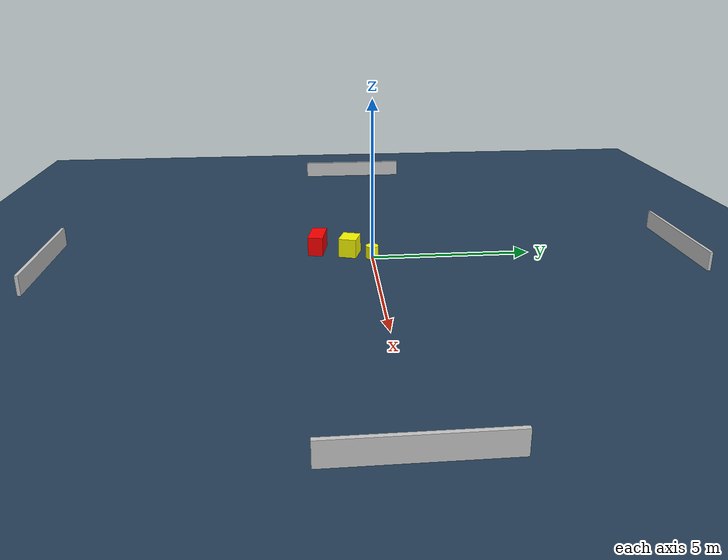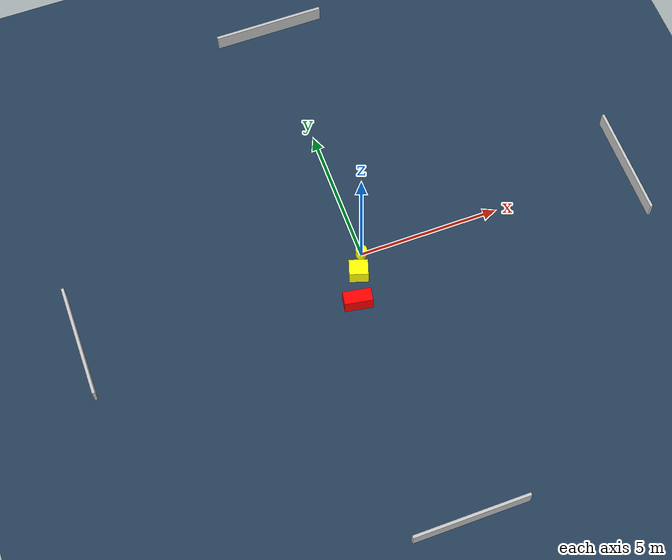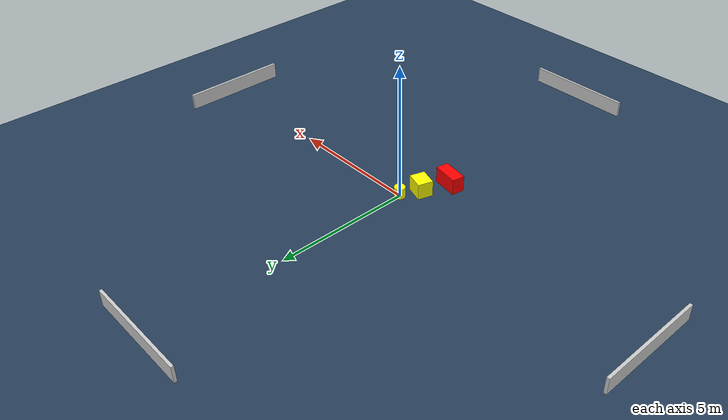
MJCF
<?xml version="1.0" ?>
<mujoco model="generated_environment">
  <option timestep="0.01" integrator="RK4" cone="elliptic"/>
  <default>
    <geom density="1"/>
  </default>
  <asset>
    <texture builtin="gradient" height="3072" name="skybox" rgb1="0.3 0.5 0.7" rgb2="0 0 0" type="skybox" width="512"/>
    <texture builtin="checker" height="300" name="groundplane" rgb1="0.2 0.3 0.4" rgb2="0.1 0.2 0.3" type="2d" width="300"/>
    <material name="groundplane" reflectance="0.2" texrepeat="5 5" texture="groundplane"/>
  </asset>
  <worldbody>
    <light dir="0 0 -1" directional="true" pos="0 0 1.5"/>
    <geom condim="3" friction="0.5 0.005 0.001" material="groundplane" name="floor" pos="0 0 0" size="0 0 0.05" type="plane"/>
    <body name="walls">
      <geom name="wall_1" condim="4" pos="-10.0 0.0 0.3" rgba="0.800000011920929 0.800000011920929 0.800000011920929 1.0" size="0.05 2.0 0.3" type="box"/>
      <geom name="wall_2" condim="4" pos="10.0 0.0 0.3" rgba="0.800000011920929 0.800000011920929 0.800000011920929 1.0" size="0.05 2.0 0.3" type="box"/>
      <geom name="wall_3" condim="4" pos="0.0 -10.0 0.3" rgba="0.800000011920929 0.800000011920929 0.800000011920929 1.0" size="2.0 0.05 0.3" type="box"/>
      <geom name="wall_4" condim="4" pos="0.0 10.0 0.3" rgba="0.800000011920929 0.800000011920929 0.800000011920929 1.0" size="2.0 0.05 0.3" type="box"/>
    </body>
    <body name="robot">
      <joint name="joint_x" type="slide" pos="0 0 0" axis="1 0 0"/>
      <joint name="joint_y" type="slide" pos="0 0 0" axis="0 1 0"/>
      <geom name="robot" type="cylinder" pos="0.0 0.0 0.2" size="0.2 0.2 0.0" mass="5.0" friction="1.0 0.005 0.0001" condim="4" rgba="1.0 1.0 0.0 1.0"/>
    </body>
    <body name="obstacle_1_movable">
      <geom name="obstacle_1_movable" condim="4" pos="-0.3539447624442265 -0.686868071547788 0.3" euler="0 0 342.3348345986823" friction="0.0 0.005 0.001" rgba="1.0 1.0 0.0 1.0" size="0.32901382295974113 0.28051467831119065 0.3" type="box" mass="0.1"/>
      <joint type="free"/>
    </body>
    <body name="obstacle_2_static">
      <geom name="obstacle_2_static" condim="4" pos="-0.7546637142622171 -1.6986668728419592 0.3" euler="0 0 170.11143264073965" friction="0.0 0.005 0.001" rgba="1.0 0.0 0.0 1.0" size="0.4868917008127804 0.23480715061737234 0.3" type="box"/>
    </body>
  </worldbody>
  <actuator>
    <motor name="actuator_x" joint="joint_x" gear="1" ctrlrange="-1 1"/>
    <motor name="actuator_y" joint="joint_y" gear="1" ctrlrange="-1 1"/>
  </actuator>
</mujoco>
